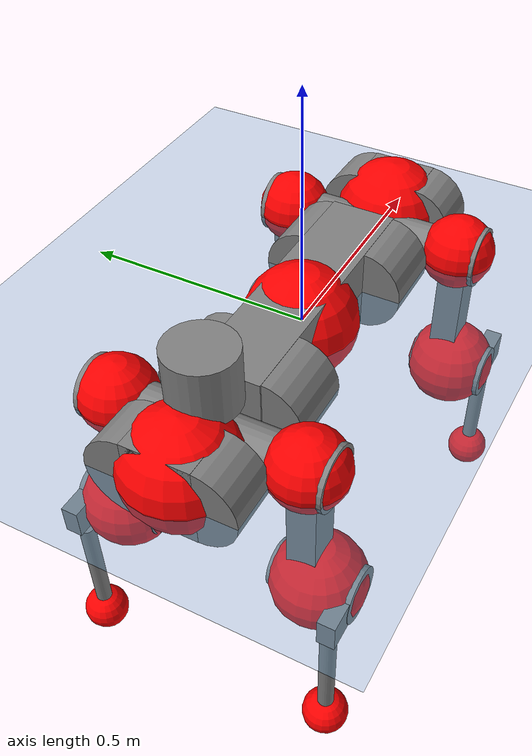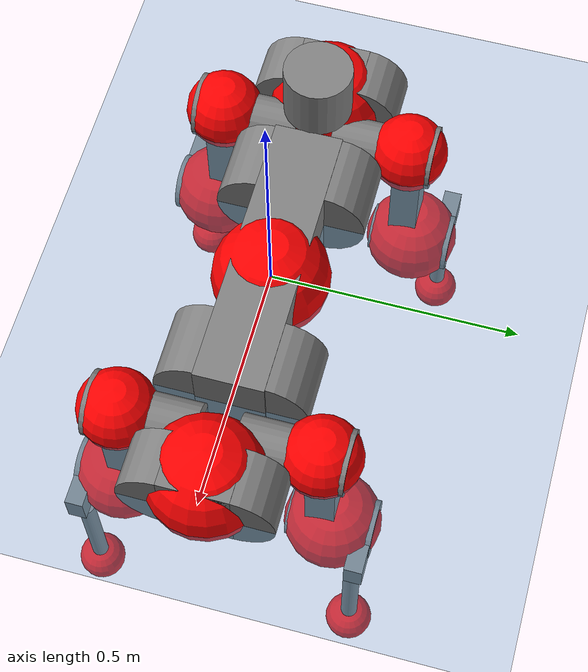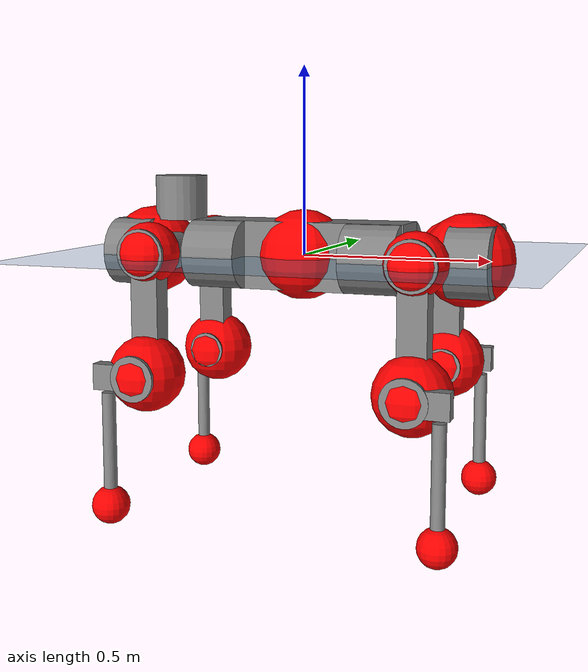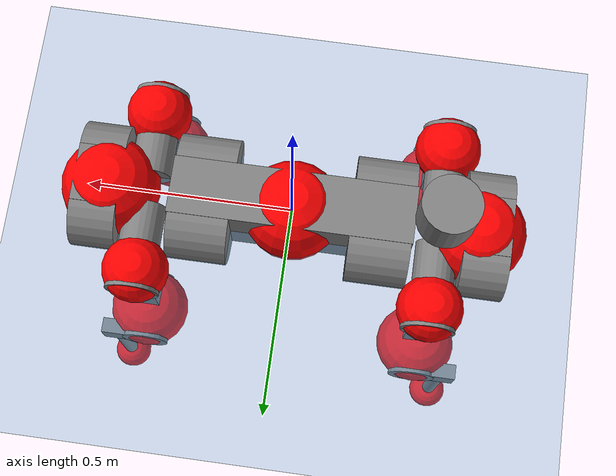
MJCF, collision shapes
<mujoco model="anymal_c">
  <compiler angle="radian" assetdir="assets" balanceinertia="true" inertiafromgeom="false"/>

  <option timestep="0.005" density="1.2" viscosity="2e-05"/>

  <size nkey="1"/>

  <visual>
    <quality shadowsize="8192"/>
    <map shadowclip="0.5"/>
  </visual>

  <default>
    <default class="/">
      <material specular="0" shininess="0.25"/>
      <geom contype="0" conaffinity="0" group="1" solref="-1000 -80"/>
      <site size="0.01 0.005 0.005" group="5"/>
      <general forcelimited="true" forcerange="-80 80" biastype="affine" gainprm="80" biasprm="0 -80 -2"/>
      <default class="anymal_c">
        <joint armature="0.01" damping="0.01" frictionloss="0.1"/>
        <default class="visual">
          <geom type="mesh" group="2"/>
          <default class="visual_zflip"/>
        </default>
        <default class="collision">
          <geom type="cylinder" group="3"/>
          <default class="foot">
            <geom size="0.03 0 0" type="sphere" condim="6" priority="1" friction="0.8 0.02 0.01" solimp="0.015 1 0.03"/>
          </default>
        </default>
      </default>
      <default class="reward_collision_sphere">
        <geom group="5" rgba="1 0 0 1"/>
      </default>
    </default>
  </default>

  <asset>
    <texture type="skybox" colorspace="auto" name="//unnamed_texture_0" builtin="gradient" rgb1="0.95 0.95 0.95" rgb2="0.95 0.95 0.95" width="100" height="600"/>
    <texture type="2d" colorspace="auto" name="texplane" builtin="checker" rgb1="0.345 0.575 0.748" rgb2="0.345 0.575 0.748" markrgb="1 1 1" width="512" height="512"/>
    <texture type="2d" colorspace="linear" name="base" file="base.png"/>
    <texture type="2d" colorspace="linear" name="top_shell" file="top_shell.png"/>
    <texture type="2d" colorspace="linear" name="bottom_shell" file="bottom_shell.png"/>
    <texture type="2d" colorspace="linear" name="remote" file="remote.png"/>
    <texture type="2d" colorspace="linear" name="hatch" file="hatch.png"/>
    <texture type="2d" colorspace="linear" name="handle" file="handle.png"/>
    <texture type="2d" colorspace="linear" name="face" file="face.png"/>
    <texture type="2d" colorspace="linear" name="battery" file="battery.png"/>
    <texture type="2d" colorspace="linear" name="lidar_cage" file="lidar_cage.png"/>
    <texture type="2d" colorspace="linear" name="depth_camera" file="depth_camera.png"/>
    <texture type="2d" colorspace="linear" name="wide_angle_camera" file="wide_angle_camera.png"/>
    <texture type="2d" colorspace="linear" name="lidar" file="lidar.png"/>
    <texture type="2d" colorspace="linear" name="drive" file="drive.png"/>
    <texture type="2d" colorspace="linear" name="hip_l" file="hip_l.png"/>
    <texture type="2d" colorspace="linear" name="shank_l" file="shank_l.png"/>
    <texture type="2d" colorspace="linear" name="foot" file="foot.png"/>
    <texture type="2d" colorspace="linear" name="thigh" file="thigh.png"/>
    <texture type="2d" colorspace="linear" name="shank_r" file="shank_r.png"/>
    <texture type="2d" colorspace="linear" name="hip_r" file="hip_r.png"/>
    <material name="MatPlane" class="/" texture="texplane" texuniform="true" texrepeat="2 2" specular="0.9" shininess="0.5"/>
    <material name="black_plastic" class="/" rgba="0.007 0.007 0.007 1"/>
    <material name="green" class="/" rgba="0.052 0.178 0.033 1"/>
    <material name="red" class="/" rgba="0.178 0.006 0.005 1"/>
    <material name="yellow" class="/" rgba="0.178 0.119 0.006 1"/>
    <material name="lwl" class="/" rgba="0.8 0.8 0.8 1"/>
    <material name="base" class="/" texture="base"/>
    <material name="top_shell" class="/" texture="top_shell"/>
    <material name="bottom_shell" class="/" texture="bottom_shell"/>
    <material name="hip_l" class="/" texture="hip_l"/>
    <material name="thigh" class="/" texture="thigh"/>
    <material name="shank_l" class="/" texture="shank_l"/>
    <material name="foot" class="/" texture="foot"/>
    <material name="hip_r" class="/" texture="hip_r"/>
    <material name="shank" class="/" texture="shank_r"/>
    <material name="hatch" class="/" texture="hatch"/>
    <material name="remote" class="/" texture="remote"/>
    <material name="handle" class="/" texture="handle"/>
    <material name="face" class="/" texture="face"/>
    <material name="depth_camera" class="/" texture="depth_camera"/>
    <material name="wide_angle_camera" class="/" texture="wide_angle_camera"/>
    <material name="battery" class="/" texture="battery"/>
    <material name="lidar_cage" class="/" texture="lidar_cage"/>
    <material name="lidar" class="/" texture="lidar"/>
    <material name="drive" class="/" texture="drive"/>
    <mesh name="base_0" class="/" file="base_0.obj"/>
    <mesh name="base_1" class="/" file="base_1.obj"/>
    <mesh name="base_2" class="/" file="base_2.obj"/>
    <mesh name="base_3" class="/" file="base_3.obj"/>
    <mesh name="base_4" class="/" file="base_4.obj"/>
    <mesh name="base_5" class="/" file="base_5.obj"/>
    <mesh name="top_shell" class="/" file="top_shell.obj"/>
    <mesh name="bottom_shell" class="/" file="bottom_shell.obj"/>
    <mesh name="remote" class="/" file="remote.obj"/>
    <mesh name="handle" class="/" file="handle.obj"/>
    <mesh name="face" class="/" file="face.obj"/>
    <mesh name="wide_angle_camera" class="/" file="wide_angle_camera.obj"/>
    <mesh name="depth_camera" class="/" file="depth_camera.obj"/>
    <mesh name="battery" class="/" file="battery.obj"/>
    <mesh name="lidar_cage" class="/" file="lidar_cage.obj"/>
    <mesh name="lidar" class="/" file="lidar.obj"/>
    <mesh name="drive" class="/" file="drive.obj"/>
    <mesh name="hip_l" class="/" file="hip_l.obj"/>
    <mesh name="thigh" class="/" file="thigh.obj"/>
    <mesh name="shank_l" class="/" file="shank_l.obj"/>
    <mesh name="foot" class="/" file="foot.obj"/>
    <mesh name="hip_r" class="/" file="hip_r.obj"/>
    <mesh name="hatch" class="/" file="hatch.obj"/>
    <mesh name="shank_r" class="/" file="shank_r.obj"/>
  </asset>

  <worldbody>
    <geom name="floor" class="/" size="100 100 0.125" type="plane" group="0" material="MatPlane"/>
    <light name="toplight_shadow" class="/" pos="0 0 5" dir="0.0990148 0.0990148 -0.990148" type="directional" ambient="0.04 0.04 0.04" diffuse="0.55 0.55 0.55" specular="0.12 0.12 0.12"/>
    <light name="toplight_fill" class="/" pos="0 0 5" dir="0.0990148 0.0990148 -0.990148" type="directional" castshadow="false" ambient="0.04 0.04 0.04" diffuse="0.3 0.3 0.3" specular="0.08 0.08 0.08"/>
    <body name="trunk" childclass="anymal_c" pos="-0.00156966 0.000455543 0.00232991" quat="0.999999 0.00123329 0.000535635 -0.000230433">
      <inertial pos="0.00309818 -0.00134036 0.0515271" quat="0.498798 0.502876 0.502238 0.496058" mass="19.3346" diaginertia="0.602177 0.419277 0.351346"/>
      <joint name="//unnamed_joint_0" type="free" armature="0" damping="0" frictionloss="0"/>
      <geom name="//unnamed_geom_1" class="visual" material="green" mesh="base_0"/>
      <geom name="//unnamed_geom_2" class="visual" material="yellow" mesh="base_1"/>
      <geom name="//unnamed_geom_3" class="visual" material="red" mesh="base_2"/>
      <geom name="//unnamed_geom_4" class="visual" material="black_plastic" mesh="base_3"/>
      <geom name="//unnamed_geom_5" class="visual" material="lwl" mesh="base_4"/>
      <geom name="//unnamed_geom_6" class="visual" material="base" mesh="base_5"/>
      <geom name="trunk_1" class="collision" size="0.291429 0.070345 0.0904435" type="box"/>
      <geom name="trunk_2" class="collision" size="0.0904435 0.0728573" pos="0.21512 0.0647003 0" quat="0.707107 0 0.707107 0"/>
      <geom name="trunk_3" class="collision" size="0.0904435 0.0728573" pos="-0.21512 0.0647003 0" quat="0.707107 0 0.707107 0"/>
      <geom name="trunk_4" class="collision" size="0.0904435 0.0728573" pos="0.21512 -0.0647003 0" quat="0.707107 0 0.707107 0"/>
      <geom name="trunk_5" class="collision" size="0.0904435 0.0728573" pos="-0.21512 -0.0647003 0" quat="0.707107 0 0.707107 0"/>
      <geom name="//unnamed_geom_12" class="visual" material="top_shell" mesh="top_shell"/>
      <geom name="//unnamed_geom_13" class="visual" material="bottom_shell" mesh="bottom_shell"/>
      <geom name="//unnamed_geom_14" class="visual" material="remote" mesh="remote"/>
      <geom name="//unnamed_geom_15" class="visual" material="handle" mesh="handle"/>
      <geom name="//unnamed_geom_16" class="visual" pos="0.409964 0 0" quat="1 0 0 0" material="face" mesh="face"/>
      <geom name="trunk_6" class="collision" size="0.0552711 0.070345 0.0904435" pos="0.464362 0 0" type="box"/>
      <geom name="//unnamed_geom_18" class="collision" size="0.0904435 0.0552711" pos="0.464362 0.0647003 0" quat="0.707107 0 0.707107 0"/>
      <geom name="//unnamed_geom_19" class="collision" size="0.0904435 0.0552711" pos="0.464362 -0.0647003 0" quat="0.707107 0 0.707107 0"/>
      <geom name="//unnamed_geom_20" class="visual" pos="0.456603 0 -0.0330161" quat="0.965926 0 0.258819 0" material="depth_camera" mesh="depth_camera"/>
      <geom name="//unnamed_geom_21" class="visual" pos="0.507386 0 0.0164885" material="wide_angle_camera" mesh="wide_angle_camera"/>
      <geom name="//unnamed_geom_22" class="visual_zflip" pos="-0.409964 0 0" quat="0 0 0 1" material="face" mesh="face"/>
      <geom name="trunk_7" class="collision" size="0.0552711 0.070345 0.0904435" pos="-0.464362 0 0" quat="0 0 0 1" type="box"/>
      <geom name="//unnamed_geom_24" class="collision" size="0.0904435 0.0552711" pos="-0.464362 -0.0647003 0" quat="0 -0.707107 0 0.707107"/>
      <geom name="//unnamed_geom_25" class="collision" size="0.0904435 0.0552711" pos="-0.464362 0.0647003 0" quat="0 -0.707107 0 0.707107"/>
      <geom name="//unnamed_geom_26" class="visual" pos="-0.456603 0 -0.0330161" quat="0 -0.258819 0 0.965926" material="depth_camera" mesh="depth_camera"/>
      <geom name="//unnamed_geom_27" class="visual_zflip" pos="-0.507386 0 0.0164885" quat="0 0 0 1" material="wide_angle_camera" mesh="wide_angle_camera"/>
      <geom name="//unnamed_geom_28" class="visual" material="battery" mesh="battery"/>
      <geom name="//unnamed_geom_29" class="visual" pos="0 0.0698259 0.0311427" quat="0.683013 -0.183013 0.183013 0.683013" material="depth_camera" mesh="depth_camera"/>
      <geom name="//unnamed_geom_30" class="visual" pos="0 -0.0698259 0.0311427" quat="0.683013 0.183013 0.183013 -0.683013" material="depth_camera" mesh="depth_camera"/>
      <geom name="//unnamed_geom_31" class="visual" pos="-0.360017 0 0.0809558" quat="1 0 0 0" material="lidar_cage" mesh="lidar_cage"/>
      <geom name="trunk_8" class="collision" size="0.070345 0.0602957" pos="-0.360017 0 0.147042"/>
      <geom name="//unnamed_geom_33" class="visual" pos="-0.360017 -2.54453e-05 0.156625" quat="0.707107 0 0 -0.707107" material="lidar" mesh="lidar"/>
      <geom name="//unnamed_geom_34" class="visual" pos="0.296618 0.096189 -3.05585e-09" quat="0.258819 0.965926 0 0" material="drive" mesh="drive"/>
      <geom name="//unnamed_geom_35" class="visual" pos="0.296618 -0.096189 3.05585e-09" quat="0.258819 -0.965926 0 0" material="drive" mesh="drive"/>
      <geom name="//unnamed_geom_36" class="visual" pos="-0.296618 0.096189 3.05585e-09" quat="0 0 0.965926 -0.258819" material="drive" mesh="drive"/>
      <geom name="//unnamed_geom_37" class="visual" pos="-0.296618 -0.096189 -3.05585e-09" quat="0 0 -0.965926 -0.258819" material="drive" mesh="drive"/>
      <geom name="//unnamed_geom_38" class="visual" pos="0.114731 0 0.080405" quat="1 0 0 0" material="hatch" mesh="hatch"/>
      <geom name="//unnamed_geom_39" class="reward_collision_sphere" size="0.120591"/>
      <geom name="//unnamed_geom_40" class="reward_collision_sphere" size="0.120591" pos="0.445075 0 0"/>
      <geom name="//unnamed_geom_41" class="reward_collision_sphere" size="0.120591" pos="-0.445075 0 0"/>
      <site name="imu" pos="0.249533 0.00853767 0.0473417" size="0.0100493"/>
      <camera name="track" pos="0 -1.84858 0" quat="0.707107 0.707107 0 0" mode="trackcom"/>
      <camera name="ego_camera" pos="0.445075 0 -0.0440576" quat="-0.5 -0.5 0.5 0.5"/>
      <body name="LF_HIP" pos="0.294759 0.0940727 -0.00145658" quat="0.258814 0.965927 -1.46364e-05 -2.56498e-05">
        <inertial pos="0.0564024 -0.0161266 -0.00815498" quat="-0.128237 0.709569 -0.135417 0.679506" mass="2.94491" diaginertia="0.00556574 0.00326749 0.00539578"/>
        <joint name="LF_HAA" pos="0 0 0" axis="0.999995 0.000420805 0.00323936" range="-0.714326 0.541961" armature="0.00953875" damping="0.0239797" frictionloss="0.0875022"/>
        <geom name="//unnamed_geom_42" class="visual" pos="0 -0.000179762 2.95257e-05" quat="0.258819 -0.965926 0 0" material="hip_l" mesh="hip_l"/>
        <geom name="//unnamed_geom_43" class="visual" pos="0.0592445 -0.0709975 -0.0423007" quat="0.183013 -0.683013 0.683013 0.183013" material="drive" mesh="drive"/>
        <geom name="//unnamed_geom_44" class="collision" size="0.0502464 0.070345" pos="0.0592445 -0.0110543 -0.00760543" quat="-0.353553 -0.612372 0.612372 -0.353553"/>
        <body name="LF_THIGH" pos="0.0567618 -0.0663914 -0.0444642" quat="0.182502 -0.683067 0.683145 0.182827">
          <inertial pos="0.0296458 -5.01742e-05 -0.26777" quat="0.992976 -0.00541917 -0.0888798 0.0779077" mass="3.04933" diaginertia="0.0289245 0.0203983 0.00701844"/>
          <joint name="LF_HFE" pos="0 0 0" axis="0.999995 -0.000666911 -0.00312897" stiffness="0.00346658" range="-3.11524 3.19087" armature="0.00924456" damping="0.0179049" frictionloss="0.0864927"/>
          <geom name="//unnamed_geom_45" class="visual" pos="0.00128861 2.03055e-06 0" quat="0.707107 0 0 -0.707107" material="thigh" mesh="thigh"/>
          <geom name="//unnamed_geom_46" class="collision" size="0.0653203 0.0401971" pos="0.0395623 0 0" quat="0.5 0.5 -0.5 -0.5"/>
          <geom name="//unnamed_geom_47" class="collision" size="0.0376848 0.0301478 0.14201" pos="0.0296717 0 -0.155649" quat="0.707107 0 0 -0.707107" type="box"/>
          <geom name="//unnamed_geom_48" class="visual" pos="0.0992024 0 -0.31391" quat="1 0 0 0" material="drive" mesh="drive"/>
          <geom name="//unnamed_geom_49" class="collision" size="0.0502464 0.070345" pos="0.0299684 0 -0.31391" quat="0.707107 0 0.707107 0"/>
          <geom name="//unnamed_geom_50" class="reward_collision_sphere" size="0.0803943" pos="0.0247264 0 0"/>
          <body name="LF_SHANK" pos="0.0985029 0.00138068 -0.312363" quat="1 -0.000446404 -0.000160571 -0.000573266">
            <inertial pos="0.00513139 -0.0555148 -0.0916452" quat="0.992703 -0.117945 -0.00269992 -0.0249361" mass="0.595339" diaginertia="0.00935438 0.00614154 0.00182454"/>
            <joint name="LF_KFE" pos="0 0 0" axis="1 -0.000557557 -0.00043802" range="-3.08775 3.13766" armature="0.0111255" damping="0.00538804" frictionloss="0.0987212"/>
            <geom name="//unnamed_geom_51" class="visual" pos="0.000420188 0.00224047 0" quat="0.707107 0 0 -0.707107" material="shank_l" mesh="shank_l"/>
            <geom name="LF_kfe_act" class="collision" size="0.0602957 0.0200986" pos="0.0197811 0 0" quat="0.5 0.5 -0.5 -0.5"/>
            <geom name="//unnamed_geom_53" class="collision" size="0.0577824 0.0339163 0.0190936" pos="0.0197811 -0.0531457 0" quat="0.5 0.5 -0.5 -0.5" type="box"/>
            <geom name="//unnamed_geom_54" class="visual" pos="0.0129071 -0.0805692 -0.372253" quat="0.382683 0 0 -0.92388" material="foot" mesh="foot"/>
            <geom name="LF_calf" class="collision" size="0.0175862 0.141948" pos="0.0129072 -0.0812913 -0.186127" quat="0.707107 0 0 -0.707107"/>
            <geom name="LF_foot" class="foot" size="0.0300912" pos="0.0129072 -0.0812913 -0.347471" quat="0.707107 0 0 -0.707107"/>
            <geom name="//unnamed_geom_57" class="reward_collision_sphere" size="0.100493" pos="-0.0494528 0 0"/>
            <geom name="//unnamed_geom_58" class="reward_collision_sphere" size="0.0502464" pos="0.0129072 -0.0812913 -0.347471"/>
            <site name="LF_foot" class="foot" pos="0.0129072 -0.0812913 -0.347471" quat="0.707107 0 0 -0.707107" size="0.0100493"/>
          </body>
        </body>
      </body>
      <body name="RF_HIP" pos="0.296302 -0.0968271 -0.00132627" quat="0.258867 -0.965913 -2.02838e-05 8.00018e-06">
        <inertial pos="0.053469 0.015071 -0.0118072" quat="0.135076 0.679301 0.127861 0.709899" mass="2.86516" diaginertia="0.00543308 0.00336669 0.0052093"/>
        <joint name="RF_HAA" pos="0 0 0" axis="0.999965 -0.00739586 0.00390319" range="-0.489444 0.71245" armature="0.0101434" damping="0.000807666" frictionloss="0.112763"/>
        <geom name="//unnamed_geom_59" class="visual" pos="0 0.00017976 2.95256e-05" quat="0.258819 0.965926 0 0" material="hip_r" mesh="hip_r"/>
        <geom name="//unnamed_geom_60" class="visual" pos="0.0592445 0.0709975 -0.0423007" quat="0.183013 0.683013 0.683013 -0.183013" material="drive" mesh="drive"/>
        <geom name="//unnamed_geom_61" class="collision" size="0.0502464 0.070345" pos="0.0592445 0.0110543 -0.00760543" quat="-0.353553 0.612372 0.612372 0.353553"/>
        <body name="RF_THIGH" pos="0.0622563 0.0645404 -0.0475445" quat="0.182684 0.683359 0.682874 -0.182566">
          <inertial pos="0.031131 -0.00214061 -0.273223" quat="0.994132 -0.010255 -0.07511 0.077174" mass="3.1669" diaginertia="0.0274247 0.0195616 0.00677755"/>
          <joint name="RF_HFE" pos="0 0 0" axis="0.999998 0.00219998 -0.000334703" range="-3.09775 3.12651" armature="0.00884831" damping="0.0115942" frictionloss="0.113831"/>
          <geom name="//unnamed_geom_62" class="visual" pos="0.00128861 2.03055e-06 0" quat="0.707107 0 0 -0.707107" material="thigh" mesh="thigh"/>
          <geom name="//unnamed_geom_63" class="collision" size="0.0653203 0.0401971" pos="0.0395623 0 0" quat="0.5 0.5 0.5 0.5"/>
          <geom name="//unnamed_geom_64" class="collision" size="0.0376848 0.0301478 0.14201" pos="0.0296717 0 -0.155649" quat="0.707107 0 0 0.707107" type="box"/>
          <geom name="//unnamed_geom_65" class="visual" pos="0.0992024 0 -0.31391" quat="1 0 0 0" material="drive" mesh="drive"/>
          <geom name="//unnamed_geom_66" class="collision" size="0.0502464 0.070345" pos="0.0299684 0 -0.31391" quat="0.707107 0 0.707107 0"/>
          <geom name="//unnamed_geom_67" class="reward_collision_sphere" size="0.0803943" pos="0.0247264 0 0"/>
          <body name="RF_SHANK" pos="0.0960702 0.000637885 -0.315005" quat="0.999999 -0.000817147 -0.000869007 0.000715575">
            <inertial pos="0.00340095 0.0564856 -0.0886528" quat="0.992939 0.115799 -0.00108245 0.0257062" mass="0.633593" diaginertia="0.0101885 0.00617119 0.00187011"/>
            <joint name="RF_KFE" pos="0 0 0" axis="0.999971 -0.00208678 0.00738195" range="-3.15027 3.08241" armature="0.0111305" damping="0.0110551" frictionloss="0.114262"/>
            <geom name="//unnamed_geom_68" class="visual" pos="0.000420186 -0.00224046 0" quat="0.707107 0 0 0.707107" material="shank" mesh="shank_r"/>
            <geom name="RF_kfe_act" class="collision" size="0.0602957 0.0200986" pos="0.0197811 0 0" quat="0.5 0.5 0.5 0.5"/>
            <geom name="//unnamed_geom_70" class="collision" size="0.0577824 0.0339163 0.0190936" pos="0.0197811 0.0531457 0" quat="0.5 0.5 0.5 0.5" type="box"/>
            <geom name="//unnamed_geom_71" class="visual" pos="0.0129073 0.0805692 -0.372253" quat="0.382683 0 0 0.92388" material="foot" mesh="foot"/>
            <geom name="RF_calf" class="collision" size="0.0175862 0.141948" pos="0.0129072 0.0812913 -0.186127" quat="0.707107 0 0 0.707107"/>
            <geom name="RF_foot" class="foot" size="0.0278726" pos="0.0129072 0.0812913 -0.347471" quat="0.707107 0 0 0.707107"/>
            <geom name="//unnamed_geom_74" class="reward_collision_sphere" size="0.100493" pos="-0.0494528 0 0"/>
            <geom name="//unnamed_geom_75" class="reward_collision_sphere" size="0.0502464" pos="0.0129072 0.0812913 -0.347471"/>
            <site name="RF_foot" class="foot" pos="0.0129072 0.0812913 -0.347471" quat="0.707107 0 0 0.707107" size="0.0100493"/>
          </body>
        </body>
      </body>
      <body name="LH_HIP" pos="-0.295107 0.0942238 -0.00106342" quat="-0.000139633 0.000603087 0.965824 -0.259199">
        <inertial pos="0.0564774 0.0164808 -0.00939739" quat="0.129671 0.679692 0.135882 0.709042" mass="2.8429" diaginertia="0.00551608 0.00329079 0.00517505"/>
        <joint name="LH_HAA" pos="0 0 0" axis="0.99995 0.00184121 0.00982339" range="-0.483716 0.771908" armature="0.0104125" damping="0.00574463" frictionloss="0.101272"/>
        <geom name="//unnamed_geom_76" class="visual" pos="0 0.00017976 2.95256e-05" quat="-0.258819 -0.965926 0 0" material="hip_r" mesh="hip_r"/>
        <geom name="//unnamed_geom_77" class="visual" pos="0.0592445 0.0709975 -0.0423007" quat="0.183013 0.683013 0.683013 -0.183013" material="drive" mesh="drive"/>
        <geom name="//unnamed_geom_78" class="collision" size="0.0502464 0.070345" pos="0.0592445 0.0110543 -0.00760543" quat="-0.353553 0.612372 0.612372 0.353553"/>
        <body name="LH_THIGH" pos="0.0588547 0.0652757 -0.0438972" quat="0.183366 0.682517 0.683247 -0.183635">
          <inertial pos="0.0311367 0.00210173 -0.270763" quat="0.99281 -0.00488091 -0.0802623 0.0886655" mass="2.92169" diaginertia="0.0278394 0.0201471 0.00677687"/>
          <joint name="LH_HFE" pos="0 0 0" axis="1 0.000853104 -0.000438677" stiffness="0.00206019" range="-3.19847 3.08759" armature="0.0104427" damping="0" frictionloss="0.0996732"/>
          <geom name="//unnamed_geom_79" class="visual" pos="0.00128861 2.03055e-06 0" quat="0.707107 0 0 -0.707107" material="thigh" mesh="thigh"/>
          <geom name="//unnamed_geom_80" class="collision" size="0.0653203 0.0401971" pos="0.0395623 0 0" quat="0.5 0.5 -0.5 -0.5"/>
          <geom name="//unnamed_geom_81" class="collision" size="0.0376848 0.0301478 0.14201" pos="0.0296717 0 -0.155649" quat="0.707107 0 0 -0.707107" type="box"/>
          <geom name="//unnamed_geom_82" class="visual" pos="0.0992024 0 -0.31391" quat="1 0 0 0" material="drive" mesh="drive"/>
          <geom name="//unnamed_geom_83" class="collision" size="0.0502464 0.070345" pos="0.0299684 0 -0.31391" quat="0.707107 0 0.707107 0"/>
          <geom name="//unnamed_geom_84" class="reward_collision_sphere" size="0.0803943" pos="0.0247264 0 0"/>
          <body name="LH_SHANK" pos="0.0973569 0.00171861 -0.31706" quat="1 -7.32174e-05 -6.41636e-05 -3.27605e-05">
            <inertial pos="0.00823133 0.0578416 -0.0909598" quat="0.993921 0.106822 -0.0108983 0.0243138" mass="0.591764" diaginertia="0.00922444 0.00628231 0.00184295"/>
            <joint name="LH_KFE" pos="0 0 0" axis="1 -0.000557732 -2.57875e-05" stiffness="0.00582866" range="-3.11259 3.08964" armature="0.0103818" damping="0.011963" frictionloss="0.09177"/>
            <geom name="//unnamed_geom_85" class="visual" pos="0.000420186 -0.00224046 0" quat="-0.707107 0 0 -0.707107" material="shank" mesh="shank_r"/>
            <geom name="LH_kfe_act" class="collision" size="0.0602957 0.0200986" pos="0.0197811 0 0" quat="0.5 0.5 -0.5 -0.5"/>
            <geom name="//unnamed_geom_87" class="collision" size="0.0577824 0.0339163 0.0190936" pos="0.0197811 0.0531457 0" quat="0.5 0.5 -0.5 -0.5" type="box"/>
            <geom name="//unnamed_geom_88" class="visual" pos="0.0129073 0.0805692 -0.372253" quat="-0.382683 0 0 -0.92388" material="foot" mesh="foot"/>
            <geom name="LH_calf" class="collision" size="0.0175862 0.141948" pos="0.0129072 0.0812913 -0.186127" quat="0.707107 0 0 -0.707107"/>
            <geom name="LH_foot" class="foot" size="0.0353306" pos="0.0129072 0.0812913 -0.347471" quat="0.707107 0 0 -0.707107"/>
            <geom name="//unnamed_geom_91" class="reward_collision_sphere" size="0.100493" pos="-0.0494528 0 0"/>
            <geom name="//unnamed_geom_92" class="reward_collision_sphere" size="0.0502464" pos="0.0129072 0.0812913 -0.347471"/>
            <site name="LH_foot" class="foot" pos="0.0129072 0.0812913 -0.347471" quat="0.707107 0 0 -0.707107" size="0.0100493"/>
          </body>
        </body>
      </body>
      <body name="RH_HIP" pos="-0.2972 -0.0964049 0.00274815" quat="-2.7272e-05 6.60269e-05 -0.965942 -0.258757">
        <inertial pos="0.0532859 -0.011447 -0.00949056" quat="-0.131906 0.709552 -0.133099 0.67928" mass="2.89761" diaginertia="0.00559646 0.00332135 0.00535342"/>
        <joint name="RH_HAA" pos="0 0 0" axis="0.99999 -0.00445224 -0.00104602" range="-0.743753 0.549296" armature="0.00870285" damping="0" frictionloss="0.101466"/>
        <geom name="//unnamed_geom_93" class="visual" pos="0 -0.000179762 2.95257e-05" quat="-0.258819 0.965926 0 0" material="hip_l" mesh="hip_l"/>
        <geom name="//unnamed_geom_94" class="visual" pos="0.0592445 -0.0709975 -0.0423007" quat="-0.183013 0.683013 -0.683013 -0.183013" material="drive" mesh="drive"/>
        <geom name="//unnamed_geom_95" class="collision" size="0.0502464 0.070345" pos="0.0592445 -0.0110543 -0.00760543" quat="0.353553 0.612372 -0.612372 0.353553"/>
        <body name="RH_THIGH" pos="0.0592701 -0.0645409 -0.0466646" quat="-0.183044 0.682649 -0.683184 -0.183696">
          <inertial pos="0.029693 0.00268253 -0.269033" quat="0.992989 -0.00519523 -0.0806652 0.0862464" mass="2.9279" diaginertia="0.0269123 0.0196833 0.00656959"/>
          <joint name="RH_HFE" pos="0 0 0" axis="0.999993 0.00375365 -0.000781597" range="-3.08611 3.10878" armature="0.00977865" damping="0.020702" frictionloss="0.0984068"/>
          <geom name="//unnamed_geom_96" class="visual" pos="0.00128861 2.03055e-06 0" quat="0.707107 0 0 -0.707107" material="thigh" mesh="thigh"/>
          <geom name="//unnamed_geom_97" class="collision" size="0.0653203 0.0401971" pos="0.0395623 0 0" quat="0.5 0.5 0.5 0.5"/>
          <geom name="//unnamed_geom_98" class="collision" size="0.0376848 0.0301478 0.14201" pos="0.0296717 0 -0.155649" quat="0.707107 0 0 0.707107" type="box"/>
          <geom name="//unnamed_geom_99" class="visual" pos="0.0992024 0 -0.31391" quat="1 0 0 0" material="drive" mesh="drive"/>
          <geom name="//unnamed_geom_100" class="collision" size="0.0502464 0.070345" pos="0.0299684 0 -0.31391" quat="0.707107 0 0.707107 0"/>
          <geom name="//unnamed_geom_101" class="reward_collision_sphere" size="0.0803943" pos="0.0247264 0 0"/>
          <body name="RH_SHANK" pos="0.0993822 0.00166864 -0.315544" quat="1 0.000349523 5.48567e-05 4.4779e-05">
            <inertial pos="0.00730405 -0.0591964 -0.0871709" quat="0.992299 -0.119014 0.00432482 -0.0340506" mass="0.592883" diaginertia="0.00936422 0.00622514 0.00176033"/>
            <joint name="RH_KFE" pos="0 0 0" axis="0.999926 0.00951347 -0.0075649" range="-3.12008 3.15737" armature="0.00984263" damping="0.0116139" frictionloss="0.114169"/>
            <geom name="//unnamed_geom_102" class="visual" pos="0.000420188 0.00224047 0" quat="0.707107 0 0 -0.707107" material="shank_l" mesh="shank_l"/>
            <geom name="RH_kfe_act" class="collision" size="0.0602957 0.0200986" pos="0.0197811 0 0" quat="0.5 0.5 0.5 0.5"/>
            <geom name="//unnamed_geom_104" class="collision" size="0.0577824 0.0339163 0.0190936" pos="0.0197811 -0.0531457 0" quat="0.5 0.5 0.5 0.5" type="box"/>
            <geom name="//unnamed_geom_105" class="visual" pos="0.0129071 -0.0805692 -0.372253" quat="0.382683 0 0 -0.92388" material="foot" mesh="foot"/>
            <geom name="RH_calf" class="collision" size="0.0175862 0.141948" pos="0.0129072 -0.0812913 -0.186127" quat="0.707107 0 0 0.707107"/>
            <geom name="RH_foot" class="foot" size="0.0263754" pos="0.0129072 -0.0812913 -0.347471" quat="0.707107 0 0 0.707107"/>
            <geom name="//unnamed_geom_108" class="reward_collision_sphere" size="0.100493" pos="-0.0494528 0 0"/>
            <geom name="//unnamed_geom_109" class="reward_collision_sphere" size="0.0502464" pos="0.0129072 -0.0812913 -0.347471"/>
            <site name="RH_foot" class="foot" pos="0.0129072 -0.0812913 -0.347471" quat="0.707107 0 0 0.707107" size="0.0100493"/>
          </body>
        </body>
      </body>
    </body>
  </worldbody>

  <contact>
    <pair class="/" geom1="floor" geom2="LF_foot" name="//unnamed_contact_0"/>
    <pair class="/" geom1="floor" geom2="RF_foot" name="//unnamed_contact_1"/>
    <pair class="/" geom1="floor" geom2="LH_foot" name="//unnamed_contact_2"/>
    <pair class="/" geom1="floor" geom2="RH_foot" name="//unnamed_contact_3"/>
  </contact>

  <actuator>
    <general name="LF_HAA" class="/" joint="LF_HAA" forcerange="-74.4887 74.4887" gainprm="74.741" biasprm="0 -74.741 -1.92418"/>
    <general name="LF_HFE" class="/" joint="LF_HFE" forcerange="-79.2341 79.2341" gainprm="74.741" biasprm="0 -74.741 -1.92418"/>
    <general name="LF_KFE" class="/" joint="LF_KFE" forcerange="-74.3227 74.3227" gainprm="74.741" biasprm="0 -74.741 -1.92418"/>
    <general name="RF_HAA" class="/" joint="RF_HAA" forcerange="-77.6632 77.6632" gainprm="74.741" biasprm="0 -74.741 -1.92418"/>
    <general name="RF_HFE" class="/" joint="RF_HFE" forcerange="-88.7024 88.7024" gainprm="74.741" biasprm="0 -74.741 -1.92418"/>
    <general name="RF_KFE" class="/" joint="RF_KFE" forcerange="-78.361 78.361" gainprm="74.741" biasprm="0 -74.741 -1.92418"/>
    <general name="LH_HAA" class="/" joint="LH_HAA" forcerange="-79.4815 79.4815" gainprm="74.741" biasprm="0 -74.741 -1.92418"/>
    <general name="LH_HFE" class="/" joint="LH_HFE" forcerange="-73.745 73.745" gainprm="74.741" biasprm="0 -74.741 -1.92418"/>
    <general name="LH_KFE" class="/" joint="LH_KFE" forcerange="-89.4449 89.4449" gainprm="74.741" biasprm="0 -74.741 -1.92418"/>
    <general name="RH_HAA" class="/" joint="RH_HAA" forcerange="-82.3408 82.3408" gainprm="74.741" biasprm="0 -74.741 -1.92418"/>
    <general name="RH_HFE" class="/" joint="RH_HFE" forcerange="-84.994 84.994" gainprm="74.741" biasprm="0 -74.741 -1.92418"/>
    <general name="RH_KFE" class="/" joint="RH_KFE" forcerange="-84.1773 84.1773" gainprm="74.741" biasprm="0 -74.741 -1.92418"/>
  </actuator>

  <sensor>
    <gyro site="imu" name="imu_angular_velocity"/>
    <velocimeter site="imu" name="imu_linear_velocity"/>
    <framelinvel objtype="site" objname="LF_foot" name="LF_foot_global_linear_velocity"/>
    <framelinvel objtype="site" objname="RF_foot" name="RF_foot_global_linear_velocity"/>
    <framelinvel objtype="site" objname="LH_foot" name="LH_foot_global_linear_velocity"/>
    <framelinvel objtype="site" objname="RH_foot" name="RH_foot_global_linear_velocity"/>
  </sensor>

  <keyframe>
    <key name="home" qpos="0 0 0.55 1 0 0 0 0 0.4 -0.8 0 -0.4 0.8 0 -0.4 0.8 0 0.4 -0.8"/>
  </keyframe>
</mujoco>
